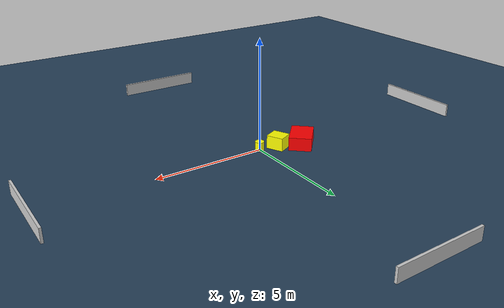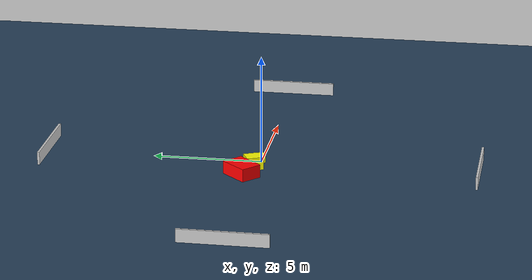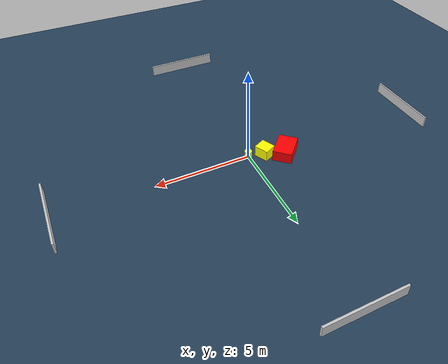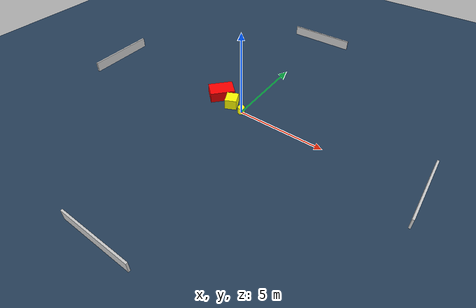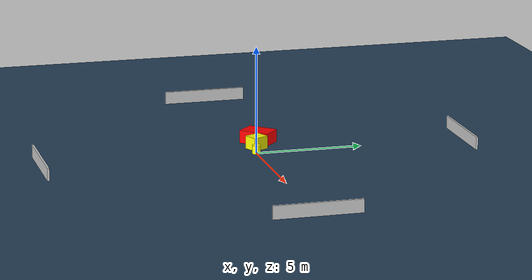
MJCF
<?xml version="1.0" ?>
<mujoco model="generated_environment">
  <option timestep="0.01" integrator="RK4" cone="elliptic"/>
  <default>
    <geom density="1"/>
  </default>
  <asset>
    <texture builtin="gradient" height="3072" name="skybox" rgb1="0.3 0.5 0.7" rgb2="0 0 0" type="skybox" width="512"/>
    <texture builtin="checker" height="300" name="groundplane" rgb1="0.2 0.3 0.4" rgb2="0.1 0.2 0.3" type="2d" width="300"/>
    <material name="groundplane" reflectance="0.2" texrepeat="5 5" texture="groundplane"/>
  </asset>
  <worldbody>
    <light dir="0 0 -1" directional="true" pos="0 0 1.5"/>
    <geom condim="3" friction="0.5 0.005 0.001" material="groundplane" name="floor" pos="0 0 0" size="0 0 0.05" type="plane"/>
    <body name="walls">
      <geom name="wall_1" condim="4" pos="-10.0 0.0 0.3" rgba="0.800000011920929 0.800000011920929 0.800000011920929 1.0" size="0.05 2.0 0.3" type="box"/>
      <geom name="wall_2" condim="4" pos="10.0 0.0 0.3" rgba="0.800000011920929 0.800000011920929 0.800000011920929 1.0" size="0.05 2.0 0.3" type="box"/>
      <geom name="wall_3" condim="4" pos="0.0 -10.0 0.3" rgba="0.800000011920929 0.800000011920929 0.800000011920929 1.0" size="2.0 0.05 0.3" type="box"/>
      <geom name="wall_4" condim="4" pos="0.0 10.0 0.3" rgba="0.800000011920929 0.800000011920929 0.800000011920929 1.0" size="2.0 0.05 0.3" type="box"/>
    </body>
    <body name="robot">
      <joint name="joint_x" type="slide" pos="0 0 0" axis="1 0 0"/>
      <joint name="joint_y" type="slide" pos="0 0 0" axis="0 1 0"/>
      <geom name="robot" type="cylinder" pos="0.0 0.0 0.2" size="0.2 0.2 0.0" mass="5.0" friction="1.0 0.005 0.0001" condim="4" rgba="1.0 1.0 0.0 1.0"/>
    </body>
    <body name="obstacle_1_movable">
      <geom name="obstacle_1_movable" condim="4" pos="-0.8355283021050952 0.2329324343251956 0.3" euler="0 0 115.0529264465769" friction="0.0 0.005 0.001" rgba="1.0 1.0 0.0 1.0" size="0.3858390477046101 0.3386325859760312 0.3" type="box" mass="0.1"/>
      <joint type="free"/>
    </body>
    <body name="obstacle_2_static">
      <geom name="obstacle_2_static" condim="4" pos="-1.8555770568246854 0.591523528958176 0.3" euler="0 0 317.15894990058564" friction="0.0 0.005 0.001" rgba="1.0 0.0 0.0 1.0" size="0.504223435962718 0.7150707019043276 0.3" type="box"/>
    </body>
  </worldbody>
  <actuator>
    <motor name="actuator_x" joint="joint_x" gear="1" ctrlrange="-1 1"/>
    <motor name="actuator_y" joint="joint_y" gear="1" ctrlrange="-1 1"/>
  </actuator>
</mujoco>
